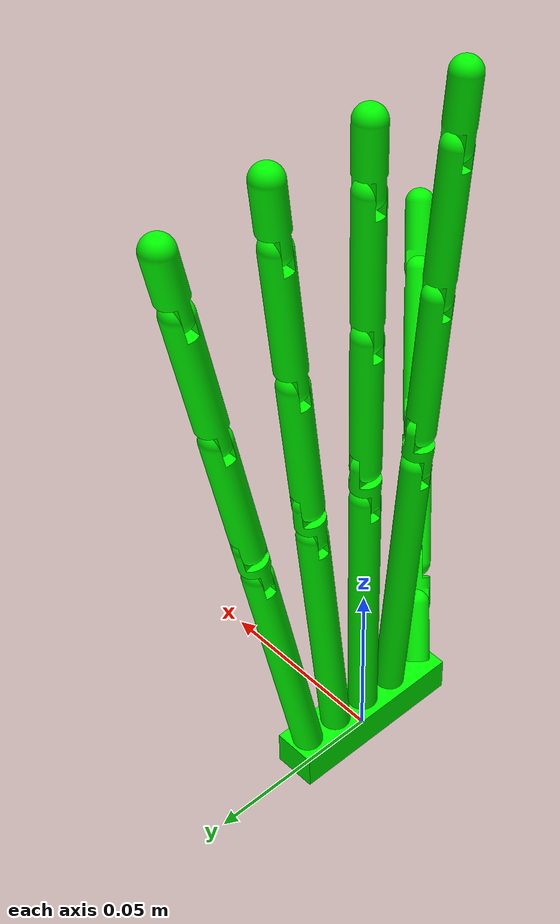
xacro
<?xml version="1.0"?>

<robot xmlns:xacro="http://www.ros.org/wiki/xacro" name="one_finger">

  <xacro:arg name="prefix" default="left"/>
  <xacro:property name="prefix" value="$(arg prefix)" />

  <xacro:macro name="phalanx" params="name mesh_file *origin">
    <link name="${name}">
    <visual>
      <xacro:insert_block name="origin" />
      <geometry>
        <mesh filename="${mesh_file}"/>
      </geometry>
      <material name="green">
        <color rgba="0 1 0 1" />
      </material>
    </visual>
  </link>
  </xacro:macro>

  <xacro:phalanx name="${prefix}_base" mesh_file="package://ros2_galactic_urdf_finger/one_hand_base.dae">
  	<origin xyz="0 0 0.0" rpy="0 0 0" />
  </xacro:phalanx>

  <xacro:phalanx name="${prefix}_metacarpals" mesh_file="package://ros2_galactic_urdf_finger/metacarpals.dae">
  	<origin xyz="0 0 0.0" rpy="0 0 0" />
  </xacro:phalanx>

  <xacro:phalanx name="${prefix}_metacarpals_2" mesh_file="package://ros2_galactic_urdf_finger/metacarpals_joint.dae">
  	<origin xyz="0 0 -0.004" rpy="0 0 1.6" />
  </xacro:phalanx>

  <xacro:phalanx name="${prefix}_proximal" mesh_file="package://ros2_galactic_urdf_finger/proximal.dae">
  	<origin xyz="0 0 -0.004" rpy="0 0 0" />
  </xacro:phalanx>

  <xacro:phalanx name="${prefix}_intermediate" mesh_file="package://ros2_galactic_urdf_finger/intermediate.dae">
  	<origin xyz="0 0 -0.004" rpy="0 0 0" />
  </xacro:phalanx>

  <xacro:phalanx name="${prefix}_distal" mesh_file="package://ros2_galactic_urdf_finger/distal.dae">
  	<origin xyz="0 0 -0.004" rpy="0 0 0" />
  </xacro:phalanx>

  <xacro:phalanx name="${prefix}_middle_metacarpals" mesh_file="package://ros2_galactic_urdf_finger/metacarpals.dae">
  	<origin xyz="0 0 0.0" rpy="0 0 0" />
  </xacro:phalanx>

  <xacro:phalanx name="${prefix}_middle_metacarpals_2" mesh_file="package://ros2_galactic_urdf_finger/metacarpals_joint.dae">
  	<origin xyz="0 0 -0.004" rpy="0 0 1.6" />
  </xacro:phalanx>

  <xacro:phalanx name="${prefix}_middle_proximal" mesh_file="package://ros2_galactic_urdf_finger/proximal.dae">
  	<origin xyz="0 0 -0.004" rpy="0 0 0" />
  </xacro:phalanx>

  <xacro:phalanx name="${prefix}_middle_intermediate" mesh_file="package://ros2_galactic_urdf_finger/intermediate.dae">
  	<origin xyz="0 0 -0.004" rpy="0 0 0" />
  </xacro:phalanx>

  <xacro:phalanx name="${prefix}_middle_distal" mesh_file="package://ros2_galactic_urdf_finger/distal.dae">
  	<origin xyz="0 0 -0.004" rpy="0 0 0" />
  </xacro:phalanx>

  <xacro:phalanx name="${prefix}_ring_metacarpals" mesh_file="package://ros2_galactic_urdf_finger/metacarpals.dae">
  	<origin xyz="0 0 0.0" rpy="0 0 0" />
  </xacro:phalanx>

  <xacro:phalanx name="${prefix}_ring_metacarpals_2" mesh_file="package://ros2_galactic_urdf_finger/metacarpals_joint.dae">
  	<origin xyz="0 0 -0.004" rpy="0 0 1.6" />
  </xacro:phalanx>

  <xacro:phalanx name="${prefix}_ring_proximal" mesh_file="package://ros2_galactic_urdf_finger/proximal.dae">
  	<origin xyz="0 0 -0.004" rpy="0 0 0" />
  </xacro:phalanx>

  <xacro:phalanx name="${prefix}_ring_intermediate" mesh_file="package://ros2_galactic_urdf_finger/intermediate.dae">
  	<origin xyz="0 0 -0.004" rpy="0 0 0" />
  </xacro:phalanx>

  <xacro:phalanx name="${prefix}_ring_distal" mesh_file="package://ros2_galactic_urdf_finger/distal.dae">
  	<origin xyz="0 0 -0.004" rpy="0 0 0" />
  </xacro:phalanx>

  <xacro:phalanx name="${prefix}_pinky_metacarpals" mesh_file="package://ros2_galactic_urdf_finger/metacarpals.dae">
  	<origin xyz="0 0 0.0" rpy="0 0 0" />
  </xacro:phalanx>

  <xacro:phalanx name="${prefix}_pinky_metacarpals_2" mesh_file="package://ros2_galactic_urdf_finger/metacarpals_joint.dae">
  	<origin xyz="0 0 -0.004" rpy="0 0 1.6" />
  </xacro:phalanx>

  <xacro:phalanx name="${prefix}_pinky_proximal" mesh_file="package://ros2_galactic_urdf_finger/proximal.dae">
  	<origin xyz="0 0 -0.004" rpy="0 0 0" />
  </xacro:phalanx>

  <xacro:phalanx name="${prefix}_pinky_intermediate" mesh_file="package://ros2_galactic_urdf_finger/intermediate.dae">
  	<origin xyz="0 0 -0.004" rpy="0 0 0" />
  </xacro:phalanx>

  <xacro:phalanx name="${prefix}_pinky_distal" mesh_file="package://ros2_galactic_urdf_finger/distal.dae">
  	<origin xyz="0 0 -0.004" rpy="0 0 0" />
  </xacro:phalanx>

  <xacro:phalanx name="${prefix}_thumb_metacarpals" mesh_file="package://ros2_galactic_urdf_finger/thumb_metacarpal_joint.dae">
  	<origin xyz="0 0 0.0" rpy="0 0 0" />
  </xacro:phalanx>

  <xacro:phalanx name="${prefix}_thumb_metacarpals_2" mesh_file="package://ros2_galactic_urdf_finger/metacarpals_joint.dae">
  	<origin xyz="0 0 -0.004" rpy="0 0 1.6" />
  </xacro:phalanx>

  <xacro:phalanx name="${prefix}_thumb_proximal" mesh_file="package://ros2_galactic_urdf_finger/proximal.dae">
  	<origin xyz="0 0 -0.004" rpy="0 0 0" />
  </xacro:phalanx>

  <xacro:phalanx name="${prefix}_thumb_intermediate" mesh_file="package://ros2_galactic_urdf_finger/intermediate.dae">
  	<origin xyz="0 0 -0.004" rpy="0 0 0" />
  </xacro:phalanx>

  <xacro:phalanx name="${prefix}_thumb_distal" mesh_file="package://ros2_galactic_urdf_finger/distal.dae">
  	<origin xyz="0 0 -0.004" rpy="0 0 0" />
  </xacro:phalanx>

  <xacro:macro name="phalanx_joint" params="name parent child *origin *axis">
    <joint name="${name}" type="revolute">
	    <xacro:insert_block name="origin" />
	    <parent link="${parent}"/>
	    <child link="${child}"/>
	    <xacro:insert_block name="axis" />
	    <limit effort="30" velocity="1.0" lower="-1.6" upper="1.6" />
    </joint>
  </xacro:macro>

  <xacro:phalanx_joint name="${prefix}_index_base_joint" parent="${prefix}_base" child="${prefix}_metacarpals">
  	<origin xyz="0 -0.01 0.01" rpy="0.1 0 0"/>
  	<axis xyz="0 1 0"/>
  </xacro:phalanx_joint>

  <xacro:phalanx_joint name="${prefix}_index_metacarpals_joint" parent="${prefix}_metacarpals" child="${prefix}_metacarpals_2">
  	<origin xyz="0 0 0.076" rpy="0 0 0"/>
  	<axis xyz="0 1 0"/>
  </xacro:phalanx_joint>

  <xacro:phalanx_joint name="${prefix}_index_metacarpals_2_joint" parent="${prefix}_metacarpals_2" child="${prefix}_proximal">
  	<origin xyz="0 0 0.011" rpy="0 0 0"/>
  	<axis xyz="1 0 0"/>
  </xacro:phalanx_joint>

  <xacro:phalanx_joint name="${prefix}_index_proximal_joint" parent="${prefix}_proximal" child="${prefix}_intermediate">
  	<origin xyz="0 0 0.04" rpy="0 0 0"/>
  	<axis xyz="0 1 0"/>
  </xacro:phalanx_joint>

  <xacro:phalanx_joint name="${prefix}_index_intermediate_joint" parent="${prefix}_intermediate" child="${prefix}_distal">
  	<origin xyz="0 0 0.04" rpy="0 0 0"/>
  	<axis xyz="0 1 0"/>
  </xacro:phalanx_joint>

  <xacro:phalanx_joint name="${prefix}_middle_base_joint" parent="${prefix}_base" child="${prefix}_middle_metacarpals">
  	<origin xyz="0 0.0 0.01" rpy="0 0 0"/>
  	<axis xyz="0 1 0"/>
  </xacro:phalanx_joint>

  <xacro:phalanx_joint name="${prefix}_middle_metacarpals_joint" parent="${prefix}_middle_metacarpals" child="${prefix}_middle_metacarpals_2">
  	<origin xyz="0 0 0.076" rpy="0 0 0"/>
  	<axis xyz="0 1 0"/>
  </xacro:phalanx_joint>

  <xacro:phalanx_joint name="${prefix}_middle_metacarpals_2_joint" parent="${prefix}_middle_metacarpals_2" child="${prefix}_middle_proximal">
  	<origin xyz="0 0 0.011" rpy="0 0 0"/>
  	<axis xyz="1 0 0"/>
  </xacro:phalanx_joint>

  <xacro:phalanx_joint name="${prefix}_middle_proximal_joint" parent="${prefix}_middle_proximal" child="${prefix}_middle_intermediate">
  	<origin xyz="0 0 0.04" rpy="0 0 0"/>
  	<axis xyz="0 1 0"/>
  </xacro:phalanx_joint>

  <xacro:phalanx_joint name="${prefix}_middle_intermediate_joint" parent="${prefix}_middle_intermediate" child="${prefix}_middle_distal">
  	<origin xyz="0 0 0.04" rpy="0 0 0"/>
  	<axis xyz="0 1 0"/>
  </xacro:phalanx_joint>

  <xacro:phalanx_joint name="${prefix}_ring_base_joint" parent="${prefix}_base" child="${prefix}_ring_metacarpals">
  	<origin xyz="0 0.01 0.01" rpy="-0.1 0 0"/>
  	<axis xyz="0 1 0"/>
  </xacro:phalanx_joint>

  <xacro:phalanx_joint name="${prefix}_ring_metacarpals_joint" parent="${prefix}_ring_metacarpals" child="${prefix}_ring_metacarpals_2">
  	<origin xyz="0 0 0.076" rpy="0 0 0"/>
  	<axis xyz="0 1 0"/>
  </xacro:phalanx_joint>

  <xacro:phalanx_joint name="${prefix}_ring_metacarpals_2_joint" parent="${prefix}_ring_metacarpals_2" child="${prefix}_ring_proximal">
  	<origin xyz="0 0 0.011" rpy="0 0 0"/>
  	<axis xyz="1 0 0"/>
  </xacro:phalanx_joint>

  <xacro:phalanx_joint name="${prefix}_ring_proximal_joint" parent="${prefix}_ring_proximal" child="${prefix}_ring_intermediate">
  	<origin xyz="0 0 0.04" rpy="0 0 0"/>
  	<axis xyz="0 1 0"/>
  </xacro:phalanx_joint>

  <xacro:phalanx_joint name="${prefix}_ring_intermediate_joint" parent="${prefix}_ring_intermediate" child="${prefix}_ring_distal">
  	<origin xyz="0 0 0.04" rpy="0 0 0"/>
  	<axis xyz="0 1 0"/>
  </xacro:phalanx_joint>

  <xacro:phalanx_joint name="${prefix}_pinky_base_joint" parent="${prefix}_base" child="${prefix}_pinky_metacarpals">
  	<origin xyz="0 0.02 0.01" rpy="-0.2 0 0"/>
  	<axis xyz="0 1 0"/>
  </xacro:phalanx_joint>

  <xacro:phalanx_joint name="${prefix}_pinky_metacarpals_joint" parent="${prefix}_pinky_metacarpals" child="${prefix}_pinky_metacarpals_2">
  	<origin xyz="0 0 0.076" rpy="0 0 0"/>
  	<axis xyz="0 1 0"/>
  </xacro:phalanx_joint>

  <xacro:phalanx_joint name="${prefix}_pinky_metacarpals_2_joint" parent="${prefix}_pinky_metacarpals_2" child="${prefix}_pinky_proximal">
  	<origin xyz="0 0 0.011" rpy="0 0 0"/>
  	<axis xyz="1 0 0"/>
  </xacro:phalanx_joint>

  <xacro:phalanx_joint name="${prefix}_pinky_proximal_joint" parent="${prefix}_pinky_proximal" child="${prefix}_pinky_intermediate">
  	<origin xyz="0 0 0.04" rpy="0 0 0"/>
  	<axis xyz="0 1 0"/>
  </xacro:phalanx_joint>

  <xacro:phalanx_joint name="${prefix}_pinky_intermediate_joint" parent="${prefix}_pinky_intermediate" child="${prefix}_pinky_distal">
  	<origin xyz="0 0 0.04" rpy="0 0 0"/>
  	<axis xyz="0 1 0"/>
  </xacro:phalanx_joint>

  <xacro:phalanx_joint name="${prefix}_thumb_base_joint" parent="${prefix}_base" child="${prefix}_thumb_metacarpals">
  	<origin xyz="0 -0.02 0.01" rpy="0.7 0 0.8"/>
  	<axis xyz="0 1 0"/>
  </xacro:phalanx_joint>

  <xacro:phalanx_joint name="${prefix}_thumb_metacarpals_joint" parent="${prefix}_thumb_metacarpals" child="${prefix}_thumb_metacarpals_2">
  	<origin xyz="0 0 0.016" rpy="0 0 0"/>
  	<axis xyz="0 1 0"/>
  </xacro:phalanx_joint>

  <xacro:phalanx_joint name="${prefix}_thumb_metacarpals_2_joint" parent="${prefix}_thumb_metacarpals_2" child="${prefix}_thumb_proximal">
  	<origin xyz="0 0 0.011" rpy="0 0 0"/>
  	<axis xyz="1 0 0"/>
  </xacro:phalanx_joint>

  <xacro:phalanx_joint name="${prefix}_thumb_proximal_joint" parent="${prefix}_thumb_proximal" child="${prefix}_thumb_intermediate">
  	<origin xyz="0 0 0.04" rpy="0 0 0"/>
  	<axis xyz="0 1 0"/>
  </xacro:phalanx_joint>

  <xacro:phalanx_joint name="${prefix}_thumb_intermediate_joint" parent="${prefix}_thumb_intermediate" child="${prefix}_thumb_distal">
  	<origin xyz="0 0 0.04" rpy="0 0 0"/>
  	<axis xyz="0 1 0"/>
  </xacro:phalanx_joint>

</robot>
